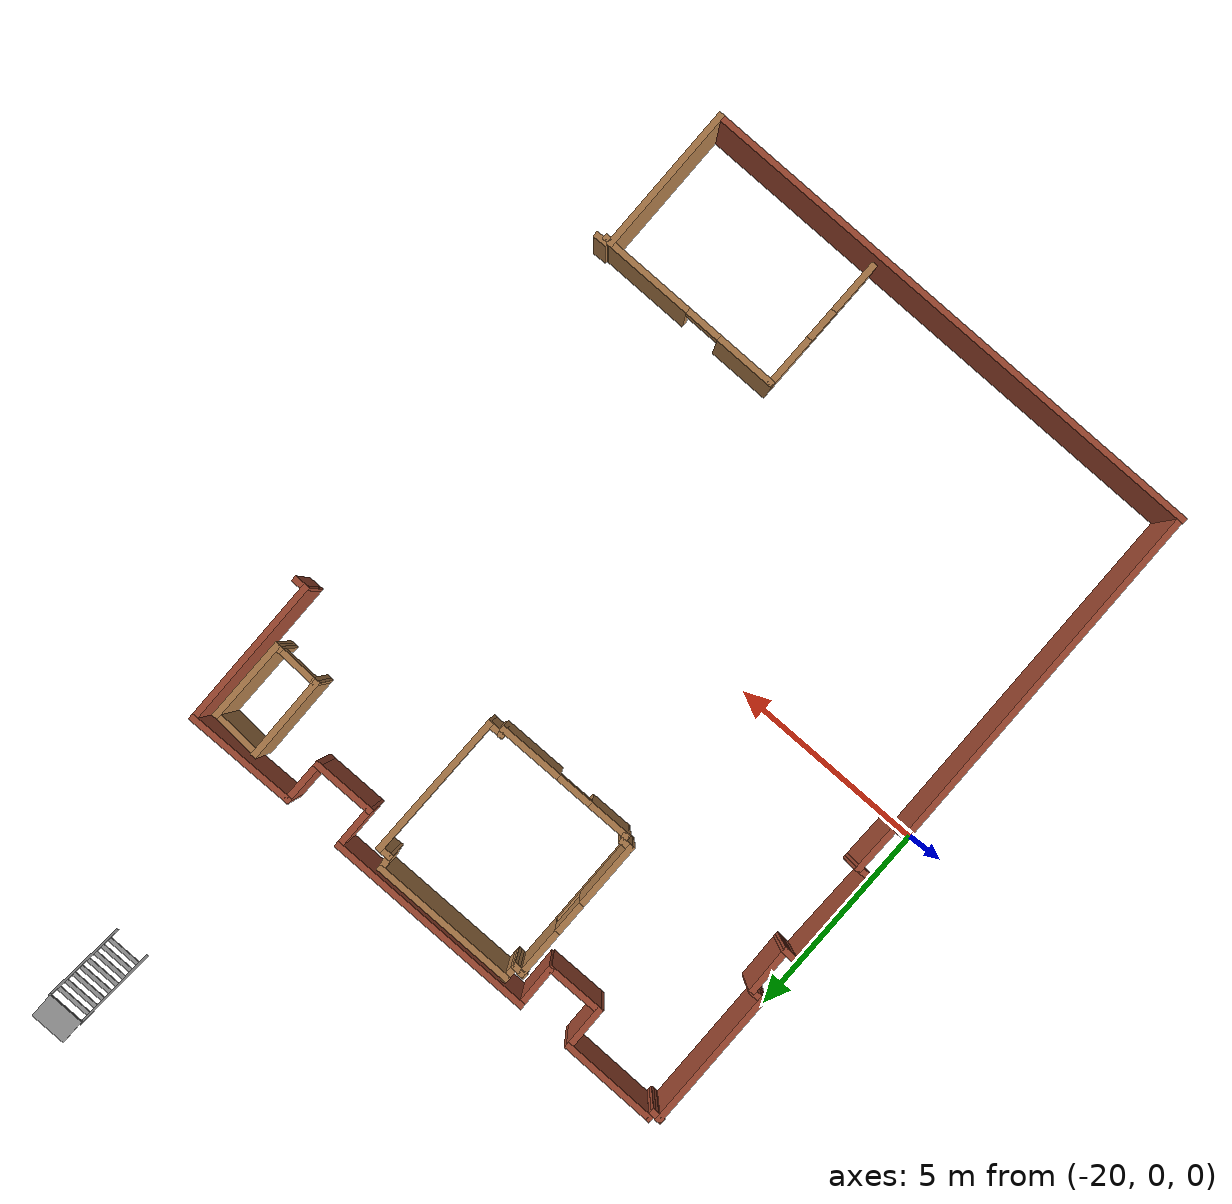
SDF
<sdf version="1.7">
 <world name="empty_world">
  <model name="my_floor">
   <pose>-0.708738 1.92561 0 0 -0 0</pose>
   <link name="Wall_11">
    <collision name="Wall_11_Collision">
     <geometry><box><size>1.12811 0.15 2.5</size></box></geometry>
     <pose>0 0 1.25 0 -0 0</pose>
    </collision>
    <visual name="Wall_11_Visual">
     <pose>0 0 1.25 0 -0 0</pose>
     <geometry><box><size>1.12811 0.15 2.5</size></box></geometry>
     <material>
      <script><uri>file://media/materials/scripts/gazebo.material</uri><name>Gazebo/Bricks</name></script>
      <ambient>1 1 1 1</ambient>
     </material>
     <meta><layer>0</layer></meta>
    </visual>
    <pose>-14.952 5.89159 0 0 -0 1.59432</pose>
   </link>
   <link name="Wall_111">
    <collision name="Wall_111_Collision">
     <geometry><box><size>0.259007 0.15 2.5</size></box></geometry>
     <pose>0 0 1.25 0 -0 0</pose>
    </collision>
    <visual name="Wall_111_Visual">
     <pose>0 0 1.25 0 -0 0</pose>
     <geometry><box><size>0.259007 0.15 2.5</size></box></geometry>
     <material>
      <script><uri>file://media/materials/scripts/gazebo.material</uri><name>Gazebo/Wood</name></script>
      <ambient>1 1 1 1</ambient>
     </material>
     <meta><layer>0</layer></meta>
    </visual>
    <pose>-5.4928 -7.3408 0 0 -0 -3.13179</pose>
   </link>
   <link name="Wall_113">
    <collision name="Wall_113_Collision">
     <geometry><box><size>0.352916 0.15 2.5</size></box></geometry>
     <pose>0 0 1.25 0 -0 0</pose>
    </collision>
    <visual name="Wall_113_Visual">
     <pose>0 0 1.25 0 -0 0</pose>
     <geometry><box><size>0.352916 0.15 2.5</size></box></geometry>
     <material>
      <script><uri>file://media/materials/scripts/gazebo.material</uri><name>Gazebo/Wood</name></script>
      <ambient>1 1 1 1</ambient>
     </material>
     <meta><layer>0</layer></meta>
    </visual>
    <pose>-5.36071 -7.24954 0 0 -0 -3.09324</pose>
   </link>
   <link name="Wall_115">
    <collision name="Wall_115_Collision">
     <geometry><box><size>3.77375 0.15 2.5</size></box></geometry>
     <pose>0 0 1.25 0 -0 0</pose>
    </collision>
    <visual name="Wall_115_Visual">
     <pose>0 0 1.25 0 -0 0</pose>
     <geometry><box><size>3.77375 0.15 2.5</size></box></geometry>
     <material>
      <script><uri>file://media/materials/scripts/gazebo.material</uri><name>Gazebo/Wood</name></script>
      <ambient>1 1 1 1</ambient>
     </material>
     <meta><layer>0</layer></meta>
    </visual>
    <pose>-5.56089 -9.12692 0 0 -0 -1.5635</pose>
   </link>
   <link name="Wall_116">
    <collision name="Wall_116_Collision">
     <geometry><box><size>13.4279 0.15 2.5</size></box></geometry>
     <pose>0 0 1.25 0 -0 0</pose>
    </collision>
    <visual name="Wall_116_Visual">
     <pose>0 0 1.25 0 -0 0</pose>
     <geometry><box><size>13.4279 0.15 2.5</size></box></geometry>
     <material>
      <script><uri>file://media/materials/scripts/gazebo.material</uri><name>Gazebo/Bricks</name></script>
      <ambient>1 1 1 1</ambient>
     </material>
     <meta><layer>0</layer></meta>
    </visual>
    <pose>-12.1866 -10.952 0 0 -0 -3.1396</pose>
   </link>
   <link name="Wall_118">
    <collision name="Wall_118_Collision">
     <geometry><box><size>9.16762 0.15 2.5</size></box></geometry>
     <pose>0 0 1.25 0 -0 0</pose>
    </collision>
    <visual name="Wall_118_Visual">
     <pose>0 0 1.25 0 -0 0</pose>
     <geometry><box><size>9.16762 0.15 2.5</size></box></geometry>
     <material>
      <script><uri>file://media/materials/scripts/gazebo.material</uri><name>Gazebo/Bricks</name></script>
      <ambient>1 1 1 1</ambient>
     </material>
     <meta><layer>0</layer></meta>
    </visual>
    <pose>-18.8288 -6.37885 0 0 -0 1.5767</pose>
   </link>
   <link name="Wall_12">
    <collision name="Wall_12_Collision">
     <geometry><box><size>5.3825 0.15 2.5</size></box></geometry>
     <pose>0 0 1.25 0 -0 0</pose>
    </collision>
    <visual name="Wall_12_Visual">
     <pose>0 0 1.25 0 -0 0</pose>
     <geometry><box><size>5.3825 0.15 2.5</size></box></geometry>
     <material>
      <script><uri>file://media/materials/scripts/gazebo.material</uri><name>Gazebo/Bricks</name></script>
      <ambient>1 1 1 1</ambient>
     </material>
     <meta><layer>0</layer></meta>
    </visual>
    <pose>-12.3472 6.38034 0 0 -0 0</pose>
   </link>
   <link name="Wall_120">
    <collision name="Wall_120_Collision">
     <geometry><box><size>0.485333 0.15 2.5</size></box></geometry>
     <pose>0 0 1.25 0 -0 0</pose>
    </collision>
    <visual name="Wall_120_Visual">
     <pose>0 0 1.25 0 -0 0</pose>
     <geometry><box><size>0.485333 0.15 2.5</size></box></geometry>
     <material>
      <script><uri>file://media/materials/scripts/gazebo.material</uri><name>Gazebo/Bricks</name></script>
      <ambient>1 1 1 1</ambient>
     </material>
     <meta><layer>0</layer></meta>
    </visual>
    <pose>-18.7212 -1.85978 0 0 -0 0</pose>
   </link>
   <link name="Wall_121">
    <collision name="Wall_121_Collision">
     <geometry><box><size>1.35342 0.15 2.5</size></box></geometry>
     <pose>0 0 1.25 0 -0 0</pose>
    </collision>
    <visual name="Wall_121_Visual">
     <pose>0 0 1.25 0 -0 0</pose>
     <geometry><box><size>1.35342 0.15 2.5</size></box></geometry>
     <material>
      <script><uri>file://media/materials/scripts/gazebo.material</uri><name>Gazebo/Bricks</name></script>
      <ambient>1 1 1 1</ambient>
     </material>
     <meta><layer>0</layer></meta>
    </visual>
    <pose>-18.5436 -1.25815 0 0 -0 1.5544</pose>
   </link>
   <link name="Wall_122">
    <collision name="Wall_122_Collision">
     <geometry><box><size>0.472451 0.15 2.5</size></box></geometry>
     <pose>0 0 1.25 0 -0 0</pose>
    </collision>
    <visual name="Wall_122_Visual">
     <pose>0 0 1.25 0 -0 0</pose>
     <geometry><box><size>0.472451 0.15 2.5</size></box></geometry>
     <material>
      <script><uri>file://media/materials/scripts/gazebo.material</uri><name>Gazebo/Bricks</name></script>
      <ambient>1 1 1 1</ambient>
     </material>
     <meta><layer>0</layer></meta>
    </visual>
    <pose>-18.6949 -0.6631 0 0 -0 -3.1008</pose>
   </link>
   <link name="Wall_124">
    <collision name="Wall_124_Collision">
     <geometry><box><size>2.54244 0.15 2.5</size></box></geometry>
     <pose>0 0 1.25 0 -0 0</pose>
    </collision>
    <visual name="Wall_124_Visual">
     <pose>0 0 1.25 0 -0 0</pose>
     <geometry><box><size>2.54244 0.15 2.5</size></box></geometry>
     <material>
      <script><uri>file://media/materials/scripts/gazebo.material</uri><name>Gazebo/Bricks</name></script>
      <ambient>1 1 1 1</ambient>
     </material>
     <meta><layer>0</layer></meta>
    </visual>
    <pose>-18.8667 0.544978 0 0 -0 1.55157</pose>
   </link>
   <link name="Wall_125">
    <collision name="Wall_125_Collision">
     <geometry><box><size>0.472205 0.15 2.5</size></box></geometry>
     <pose>0 0 1.25 0 -0 0</pose>
    </collision>
    <visual name="Wall_125_Visual">
     <pose>0 0 1.25 0 -0 0</pose>
     <geometry><box><size>0.472205 0.15 2.5</size></box></geometry>
     <material>
      <script><uri>file://media/materials/scripts/gazebo.material</uri><name>Gazebo/Bricks</name></script>
      <ambient>1 1 1 1</ambient>
     </material>
     <meta><layer>0</layer></meta>
    </visual>
    <pose>-18.6827 1.73523 0 0 -0 -0.035699</pose>
   </link>
   <link name="Wall_126">
    <collision name="Wall_126_Collision">
     <geometry><box><size>1.24274 0.15 2.5</size></box></geometry>
     <pose>0 0 1.25 0 -0 0</pose>
    </collision>
    <visual name="Wall_126_Visual">
     <pose>0 0 1.25 0 -0 0</pose>
     <geometry><box><size>1.24274 0.15 2.5</size></box></geometry>
     <material>
      <script><uri>file://media/materials/scripts/gazebo.material</uri><name>Gazebo/Bricks</name></script>
      <ambient>1 1 1 1</ambient>
     </material>
     <meta><layer>0</layer></meta>
    </visual>
    <pose>-18.5332 2.27573 0 0 -0 1.59185</pose>
   </link>
   <link name="Wall_13">
    <collision name="Wall_13_Collision">
     <geometry><box><size>1.16206 0.15 2.5</size></box></geometry>
     <pose>0 0 1.25 0 -0 0</pose>
    </collision>
    <visual name="Wall_13_Visual">
     <pose>0 0 1.25 0 -0 0</pose>
     <geometry><box><size>1.16206 0.15 2.5</size></box></geometry>
     <material>
      <script><uri>file://media/materials/scripts/gazebo.material</uri><name>Gazebo/Bricks</name></script>
      <ambient>1 1 1 1</ambient>
     </material>
     <meta><layer>0</layer></meta>
    </visual>
    <pose>-9.72525 5.87434 0 0 -0 -1.55943</pose>
   </link>
   <link name="Wall_139">
    <pose>-7.87411 -7.31509 0 0 -0 3.14159</pose>
    <visual name="Wall_139_Visual_0">
     <pose>-1.22688 0 1.25 0 -0 0</pose>
     <geometry><box><size>2.29625 0.15 2.5</size></box></geometry>
     <material>
      <script><uri>file://media/materials/scripts/gazebo.material</uri><name>Gazebo/Wood</name></script>
      <ambient>1 1 1 1</ambient>
     </material>
     <meta><layer>0</layer></meta>
    </visual>
    <collision name="Wall_139_Collision_0">
     <geometry><box><size>2.29625 0.15 2.5</size></box></geometry>
     <pose>-1.22688 0 1.25 0 -0 0</pose>
    </collision>
    <visual name="Wall_139_Visual_1">
     <pose>1.59812 0 1.25 0 -0 0</pose>
     <geometry><box><size>1.55375 0.15 2.5</size></box></geometry>
     <material>
      <script><uri>file://media/materials/scripts/gazebo.material</uri><name>Gazebo/Wood</name></script>
      <ambient>1 1 1 1</ambient>
     </material>
     <meta><layer>0</layer></meta>
    </visual>
    <collision name="Wall_139_Collision_1">
     <geometry><box><size>1.55375 0.15 2.5</size></box></geometry>
     <pose>1.59812 0 1.25 0 -0 0</pose>
    </collision>
    <visual name="Wall_139_Visual_2">
     <pose>0.371246 0 2.25 0 -0 0</pose>
     <geometry><box><size>0.9 0.15 0.5</size></box></geometry>
     <material>
      <script><uri>file://media/materials/scripts/gazebo.material</uri><name>Gazebo/Wood</name></script>
      <ambient>1 1 1 1</ambient>
     </material>
     <meta><layer>0</layer></meta>
    </visual>
    <collision name="Wall_139_Collision_2">
     <geometry><box><size>0.9 0.15 0.5</size></box></geometry>
     <pose>0.371246 0 2.25 0 -0 0</pose>
    </collision>
   </link>
   <link name="Wall_14">
    <collision name="Wall_14_Collision">
     <geometry><box><size>1.6335 0.15 2.5</size></box></geometry>
     <pose>0 0 1.25 0 -0 0</pose>
    </collision>
    <visual name="Wall_14_Visual">
     <pose>0 0 1.25 0 -0 0</pose>
     <geometry><box><size>1.6335 0.15 2.5</size></box></geometry>
     <material>
      <script><uri>file://media/materials/scripts/gazebo.material</uri><name>Gazebo/Bricks</name></script>
      <ambient>1 1 1 1</ambient>
     </material>
     <meta><layer>0</layer></meta>
    </visual>
    <pose>-8.97775 5.36834 0 0 -0 0</pose>
   </link>
   <link name="Wall_140">
    <pose>-10.1741 -8.99009 0 0 -0 -1.5708</pose>
    <visual name="Wall_140_Visual_0">
     <pose>-1.07557 0 1.25 0 -0 0</pose>
     <geometry><box><size>1.34886 0.15 2.5</size></box></geometry>
     <material>
      <script><uri>file://media/materials/scripts/gazebo.material</uri><name>Gazebo/Wood</name></script>
      <ambient>1 1 1 1</ambient>
     </material>
     <meta><layer>0</layer></meta>
    </visual>
    <collision name="Wall_140_Collision_0">
     <geometry><box><size>1.34886 0.15 2.5</size></box></geometry>
     <pose>-1.07557 0 1.25 0 -0 0</pose>
    </collision>
    <visual name="Wall_140_Visual_1">
     <pose>0.674431 0 0.25 0 -0 0</pose>
     <geometry><box><size>2.15114 0.15 0.5</size></box></geometry>
     <material>
      <script><uri>file://media/materials/scripts/gazebo.material</uri><name>Gazebo/Wood</name></script>
      <ambient>1 1 1 1</ambient>
     </material>
     <meta><layer>0</layer></meta>
    </visual>
    <collision name="Wall_140_Collision_1">
     <geometry><box><size>2.15114 0.15 0.5</size></box></geometry>
     <pose>0.674431 0 0.25 0 -0 0</pose>
    </collision>
    <visual name="Wall_140_Visual_2">
     <pose>1.07443 0 1.5 0 -0 0</pose>
     <geometry><box><size>1.35114 0.15 2</size></box></geometry>
     <material>
      <script><uri>file://media/materials/scripts/gazebo.material</uri><name>Gazebo/Wood</name></script>
      <ambient>1 1 1 1</ambient>
     </material>
     <meta><layer>0</layer></meta>
    </visual>
    <collision name="Wall_140_Collision_2">
     <geometry><box><size>1.35114 0.15 2</size></box></geometry>
     <pose>1.07443 0 1.5 0 -0 0</pose>
    </collision>
    <visual name="Wall_140_Visual_3">
     <pose>-0.001139 0 1.9 0 -0 0</pose>
     <geometry><box><size>0.8 0.15 1.2</size></box></geometry>
     <material>
      <script><uri>file://media/materials/scripts/gazebo.material</uri><name>Gazebo/Wood</name></script>
      <ambient>1 1 1 1</ambient>
     </material>
     <meta><layer>0</layer></meta>
    </visual>
    <collision name="Wall_140_Collision_3">
     <geometry><box><size>0.8 0.15 1.2</size></box></geometry>
     <pose>-0.001139 0 1.9 0 -0 0</pose>
    </collision>
   </link>
   <link name="Wall_15">
    <collision name="Wall_15_Collision">
     <geometry><box><size>1.13907 0.15 2.5</size></box></geometry>
     <pose>0 0 1.25 0 -0 0</pose>
    </collision>
    <visual name="Wall_15_Visual">
     <pose>0 0 1.25 0 -0 0</pose>
     <geometry><box><size>1.13907 0.15 2.5</size></box></geometry>
     <material>
      <script><uri>file://media/materials/scripts/gazebo.material</uri><name>Gazebo/Bricks</name></script>
      <ambient>1 1 1 1</ambient>
     </material>
     <meta><layer>0</layer></meta>
    </visual>
    <pose>-8.236 5.86284 0 0 -0 1.5708</pose>
   </link>
   <link name="Wall_16">
    <collision name="Wall_16_Collision">
     <geometry><box><size>2.8411 0.15 2.5</size></box></geometry>
     <pose>0 0 1.25 0 -0 0</pose>
    </collision>
    <visual name="Wall_16_Visual">
     <pose>0 0 1.25 0 -0 0</pose>
     <geometry><box><size>2.8411 0.15 2.5</size></box></geometry>
     <material>
      <script><uri>file://media/materials/scripts/gazebo.material</uri><name>Gazebo/Bricks</name></script>
      <ambient>1 1 1 1</ambient>
     </material>
     <meta><layer>0</layer></meta>
    </visual>
    <pose>-6.8905 6.36884 0 0 -0 0.008547</pose>
   </link>
   <link name="Wall_17">
    <collision name="Wall_17_Collision">
     <geometry><box><size>3.86466 0.15 2.5</size></box></geometry>
     <pose>0 0 1.25 0 -0 0</pose>
    </collision>
    <visual name="Wall_17_Visual">
     <pose>0 0 1.25 0 -0 0</pose>
     <geometry><box><size>3.86466 0.15 2.5</size></box></geometry>
     <material>
      <script><uri>file://media/materials/scripts/gazebo.material</uri><name>Gazebo/Bricks</name></script>
      <ambient>1 1 1 1</ambient>
     </material>
     <meta><layer>0</layer></meta>
    </visual>
    <pose>-5.52775 4.52309 0 0 -0 -1.56151</pose>
   </link>
   <link name="Wall_18">
    <collision name="Wall_18_Collision">
     <geometry><box><size>0.403 0.15 2.5</size></box></geometry>
     <pose>0 0 1.25 0 -0 0</pose>
    </collision>
    <visual name="Wall_18_Visual">
     <pose>0 0 1.25 0 -0 0</pose>
     <geometry><box><size>0.403 0.15 2.5</size></box></geometry>
     <material>
      <script><uri>file://media/materials/scripts/gazebo.material</uri><name>Gazebo/Bricks</name></script>
      <ambient>1 1 1 1</ambient>
     </material>
     <meta><layer>0</layer></meta>
    </visual>
    <pose>-5.384 2.66584 0 0 -0 0</pose>
   </link>
   <link name="Wall_2">
    <collision name="Wall_2_Collision">
     <geometry><box><size>3.56024 0.15 2.5</size></box></geometry>
     <pose>0 0 1.25 0 -0 0</pose>
    </collision>
    <visual name="Wall_2_Visual">
     <pose>0 0 1.25 0 -0 0</pose>
     <geometry><box><size>3.56024 0.15 2.5</size></box></geometry>
     <material>
      <script><uri>file://media/materials/scripts/gazebo.material</uri><name>Gazebo/Bricks</name></script>
      <ambient>1 1 1 1</ambient>
     </material>
     <meta><layer>0</layer></meta>
    </visual>
    <pose>-18.8463 4.56064 0 0 -0 -1.56636</pose>
   </link>
   <link name="Wall_20">
    <pose>-14.5295 4.06307 0 0 -0 -1.56712</pose>
    <visual name="Wall_20_Visual_0">
     <pose>-1.24637 0 1.25 0 -0 0</pose>
     <geometry><box><size>1.25449 0.15 2.5</size></box></geometry>
     <material>
      <script><uri>file://media/materials/scripts/gazebo.material</uri><name>Gazebo/Wood</name></script>
      <ambient>1 1 1 1</ambient>
     </material>
     <meta><layer>0</layer></meta>
    </visual>
    <collision name="Wall_20_Collision_0">
     <geometry><box><size>1.25449 0.15 2.5</size></box></geometry>
     <pose>-1.24637 0 1.25 0 -0 0</pose>
    </collision>
    <visual name="Wall_20_Visual_1">
     <pose>0.627246 0 0.25 0 -0 0</pose>
     <geometry><box><size>2.49273 0.15 0.5</size></box></geometry>
     <material>
      <script><uri>file://media/materials/scripts/gazebo.material</uri><name>Gazebo/Wood</name></script>
      <ambient>1 1 1 1</ambient>
     </material>
     <meta><layer>0</layer></meta>
    </visual>
    <collision name="Wall_20_Collision_1">
     <geometry><box><size>2.49273 0.15 0.5</size></box></geometry>
     <pose>0.627246 0 0.25 0 -0 0</pose>
    </collision>
    <visual name="Wall_20_Visual_2">
     <pose>1.02725 0 1.5 0 -0 0</pose>
     <geometry><box><size>1.69273 0.15 2</size></box></geometry>
     <material>
      <script><uri>file://media/materials/scripts/gazebo.material</uri><name>Gazebo/Wood</name></script>
      <ambient>1 1 1 1</ambient>
     </material>
     <meta><layer>0</layer></meta>
    </visual>
    <collision name="Wall_20_Collision_2">
     <geometry><box><size>1.69273 0.15 2</size></box></geometry>
     <pose>1.02725 0 1.5 0 -0 0</pose>
    </collision>
    <visual name="Wall_20_Visual_3">
     <pose>-0.219121 0 1.9 0 -0 0</pose>
     <geometry><box><size>0.8 0.15 1.2</size></box></geometry>
     <material>
      <script><uri>file://media/materials/scripts/gazebo.material</uri><name>Gazebo/Wood</name></script>
      <ambient>1 1 1 1</ambient>
     </material>
     <meta><layer>0</layer></meta>
    </visual>
    <collision name="Wall_20_Collision_3">
     <geometry><box><size>0.8 0.15 1.2</size></box></geometry>
     <pose>-0.219121 0 1.9 0 -0 0</pose>
    </collision>
   </link>
   <link name="Wall_21">
    <collision name="Wall_21_Collision">
     <geometry><box><size>0.3616 0.15 2.5</size></box></geometry>
     <pose>0 0 1.25 0 -0 0</pose>
    </collision>
    <visual name="Wall_21_Visual">
     <pose>0 0 1.25 0 -0 0</pose>
     <geometry><box><size>0.3616 0.15 2.5</size></box></geometry>
     <material>
      <script><uri>file://media/materials/scripts/gazebo.material</uri><name>Gazebo/Wood</name></script>
      <ambient>1 1 1 1</ambient>
     </material>
     <meta><layer>0</layer></meta>
    </visual>
    <pose>-14.417 2.26447 0 0 -0 0</pose>
   </link>
   <link name="Wall_22">
    <collision name="Wall_22_Collision">
     <geometry><box><size>0.282779 0.15 2.5</size></box></geometry>
     <pose>0 0 1.25 0 -0 0</pose>
    </collision>
    <visual name="Wall_22_Visual">
     <pose>0 0 1.25 0 -0 0</pose>
     <geometry><box><size>0.282779 0.15 2.5</size></box></geometry>
     <material>
      <script><uri>file://media/materials/scripts/gazebo.material</uri><name>Gazebo/Wood</name></script>
      <ambient>1 1 1 1</ambient>
     </material>
     <meta><layer>0</layer></meta>
    </visual>
    <pose>-14.2871 2.20261 0 0 -0 -1.19926</pose>
   </link>
   <link name="Wall_23">
    <pose>-12.5282 2.12987 0 0 -0 0.003774</pose>
    <visual name="Wall_23_Visual_0">
     <pose>-1.27076 0 1.25 0 -0 0</pose>
     <geometry><box><size>1.11312 0.15 2.5</size></box></geometry>
     <material>
      <script><uri>file://media/materials/scripts/gazebo.material</uri><name>Gazebo/Wood</name></script>
      <ambient>1 1 1 1</ambient>
     </material>
     <meta><layer>0</layer></meta>
    </visual>
    <collision name="Wall_23_Collision_0">
     <geometry><box><size>1.11312 0.15 2.5</size></box></geometry>
     <pose>-1.27076 0 1.25 0 -0 0</pose>
    </collision>
    <visual name="Wall_23_Visual_1">
     <pose>1.00656 0 1.25 0 -0 0</pose>
     <geometry><box><size>1.64153 0.15 2.5</size></box></geometry>
     <material>
      <script><uri>file://media/materials/scripts/gazebo.material</uri><name>Gazebo/Wood</name></script>
      <ambient>1 1 1 1</ambient>
     </material>
     <meta><layer>0</layer></meta>
    </visual>
    <collision name="Wall_23_Collision_1">
     <geometry><box><size>1.64153 0.15 2.5</size></box></geometry>
     <pose>1.00656 0 1.25 0 -0 0</pose>
    </collision>
    <visual name="Wall_23_Visual_2">
     <pose>-0.264201 0 2.25 0 -0 0</pose>
     <geometry><box><size>0.9 0.15 0.5</size></box></geometry>
     <material>
      <script><uri>file://media/materials/scripts/gazebo.material</uri><name>Gazebo/Wood</name></script>
      <ambient>1 1 1 1</ambient>
     </material>
     <meta><layer>0</layer></meta>
    </visual>
    <collision name="Wall_23_Collision_2">
     <geometry><box><size>0.9 0.15 0.5</size></box></geometry>
     <pose>-0.264201 0 2.25 0 -0 0</pose>
    </collision>
   </link>
   <link name="Wall_24">
    <collision name="Wall_24_Collision">
     <geometry><box><size>0.253368 0.15 2.5</size></box></geometry>
     <pose>0 0 1.25 0 -0 0</pose>
    </collision>
    <visual name="Wall_24_Visual">
     <pose>0 0 1.25 0 -0 0</pose>
     <geometry><box><size>0.253368 0.15 2.5</size></box></geometry>
     <material>
      <script><uri>file://media/materials/scripts/gazebo.material</uri><name>Gazebo/Wood</name></script>
      <ambient>1 1 1 1</ambient>
     </material>
     <meta><layer>0</layer></meta>
    </visual>
    <pose>-10.7759 2.20261 0 0 -0 1.91602</pose>
   </link>
   <link name="Wall_25">
    <collision name="Wall_25_Collision">
     <geometry><box><size>0.494104 0.15 2.5</size></box></geometry>
     <pose>0 0 1.25 0 -0 0</pose>
    </collision>
    <visual name="Wall_25_Visual">
     <pose>0 0 1.25 0 -0 0</pose>
     <geometry><box><size>0.494104 0.15 2.5</size></box></geometry>
     <material>
      <script><uri>file://media/materials/scripts/gazebo.material</uri><name>Gazebo/Wood</name></script>
      <ambient>1 1 1 1</ambient>
     </material>
     <meta><layer>0</layer></meta>
    </visual>
    <pose>-10.6215 2.25125 0 0 -0 0</pose>
   </link>
   <link name="Wall_26">
    <collision name="Wall_26_Collision">
     <geometry><box><size>3.734 0.15 2.5</size></box></geometry>
     <pose>0 0 1.25 0 -0 0</pose>
    </collision>
    <visual name="Wall_26_Visual">
     <pose>0 0 1.25 0 -0 0</pose>
     <geometry><box><size>3.734 0.15 2.5</size></box></geometry>
     <material>
      <script><uri>file://media/materials/scripts/gazebo.material</uri><name>Gazebo/Wood</name></script>
      <ambient>1 1 1 1</ambient>
     </material>
     <meta><layer>0</layer></meta>
    </visual>
    <pose>-10.4429 4.04323 0 0 -0 1.56711</pose>
   </link>
   <link name="Wall_27">
    <collision name="Wall_27_Collision">
     <geometry><box><size>0.4145 0.15 2.5</size></box></geometry>
     <pose>0 0 1.25 0 -0 0</pose>
    </collision>
    <visual name="Wall_27_Visual">
     <pose>0 0 1.25 0 -0 0</pose>
     <geometry><box><size>0.4145 0.15 2.5</size></box></geometry>
     <material>
      <script><uri>file://media/materials/scripts/gazebo.material</uri><name>Gazebo/Wood</name></script>
      <ambient>1 1 1 1</ambient>
     </material>
     <meta><layer>0</layer></meta>
    </visual>
    <pose>-10.5686 5.83522 0 0 -0 3.14159</pose>
   </link>
   <link name="Wall_28">
    <collision name="Wall_28_Collision">
     <geometry><box><size>0.471778 0.15 2.5</size></box></geometry>
     <pose>0 0 1.25 0 -0 0</pose>
    </collision>
    <visual name="Wall_28_Visual">
     <pose>0 0 1.25 0 -0 0</pose>
     <geometry><box><size>0.471778 0.15 2.5</size></box></geometry>
     <material>
      <script><uri>file://media/materials/scripts/gazebo.material</uri><name>Gazebo/Wood</name></script>
      <ambient>1 1 1 1</ambient>
     </material>
     <meta><layer>0</layer></meta>
    </visual>
    <pose>-10.7273 5.99392 0 0 -0 1.73595</pose>
   </link>
   <link name="Wall_29">
    <collision name="Wall_29_Collision">
     <geometry><box><size>3.73398 0.15 2.5</size></box></geometry>
     <pose>0 0 1.25 0 -0 0</pose>
    </collision>
    <visual name="Wall_29_Visual">
     <pose>0 0 1.25 0 -0 0</pose>
     <geometry><box><size>3.73398 0.15 2.5</size></box></geometry>
     <material>
      <script><uri>file://media/materials/scripts/gazebo.material</uri><name>Gazebo/Wood</name></script>
      <ambient>1 1 1 1</ambient>
     </material>
     <meta><layer>0</layer></meta>
    </visual>
    <pose>-12.5457 6.15262 0 0 -0 3.14159</pose>
   </link>
   <link name="Wall_3">
    <collision name="Wall_3_Collision">
     <geometry><box><size>0.4072 0.15 2.5</size></box></geometry>
     <pose>0 0 1.25 0 -0 0</pose>
    </collision>
    <visual name="Wall_3_Visual">
     <pose>0 0 1.25 0 -0 0</pose>
     <geometry><box><size>0.4072 0.15 2.5</size></box></geometry>
     <material>
      <script><uri>file://media/materials/scripts/gazebo.material</uri><name>Gazebo/Bricks</name></script>
      <ambient>1 1 1 1</ambient>
     </material>
     <meta><layer>0</layer></meta>
    </visual>
    <pose>-18.7102 2.85932 0 0 -0 0.029403</pose>
   </link>
   <link name="Wall_31">
    <collision name="Wall_31_Collision">
     <geometry><box><size>0.388417 0.15 2.5</size></box></geometry>
     <pose>0 0 1.25 0 -0 0</pose>
    </collision>
    <visual name="Wall_31_Visual">
     <pose>0 0 1.25 0 -0 0</pose>
     <geometry><box><size>0.388417 0.15 2.5</size></box></geometry>
     <material>
      <script><uri>file://media/materials/scripts/gazebo.material</uri><name>Gazebo/Wood</name></script>
      <ambient>1 1 1 1</ambient>
     </material>
     <meta><layer>0</layer></meta>
    </visual>
    <pose>-14.4567 5.84183 0 0 -0 -0.055499</pose>
   </link>
   <link name="Wall_32">
    <collision name="Wall_32_Collision">
     <geometry><box><size>0.494104 0.15 2.5</size></box></geometry>
     <pose>0 0 1.25 0 -0 0</pose>
    </collision>
    <visual name="Wall_32_Visual">
     <pose>0 0 1.25 0 -0 0</pose>
     <geometry><box><size>0.494104 0.15 2.5</size></box></geometry>
     <material>
      <script><uri>file://media/materials/scripts/gazebo.material</uri><name>Gazebo/Wood</name></script>
      <ambient>1 1 1 1</ambient>
     </material>
     <meta><layer>0</layer></meta>
    </visual>
    <pose>-14.3377 6.00715 0 0 -0 1.5708</pose>
   </link>
   <link name="Wall_34">
    <collision name="Wall_34_Collision">
     <geometry><box><size>2.16037 0.15 2.5</size></box></geometry>
     <pose>0 0 1.25 0 -0 0</pose>
    </collision>
    <visual name="Wall_34_Visual">
     <pose>0 0 1.25 0 -0 0</pose>
     <geometry><box><size>2.16037 0.15 2.5</size></box></geometry>
     <material>
      <script><uri>file://media/materials/scripts/gazebo.material</uri><name>Gazebo/Wood</name></script>
      <ambient>1 1 1 1</ambient>
     </material>
     <meta><layer>0</layer></meta>
    </visual>
    <pose>-7.05072 5.06817 0 0 -0 -1.55764</pose>
   </link>
   <link name="Wall_35">
    <pose>-6.4556 4.04323 0 0 -0 -0.034078</pose>
    <visual name="Wall_35_Visual_0">
     <pose>-0.5652 0 1.25 0 -0 0</pose>
     <geometry><box><size>0.184077 0.15 2.5</size></box></geometry>
     <material>
      <script><uri>file://media/materials/scripts/gazebo.material</uri><name>Gazebo/Wood</name></script>
      <ambient>1 1 1 1</ambient>
     </material>
     <meta><layer>0</layer></meta>
    </visual>
    <collision name="Wall_35_Collision_0">
     <geometry><box><size>0.184077 0.15 2.5</size></box></geometry>
     <pose>-0.5652 0 1.25 0 -0 0</pose>
    </collision>
    <visual name="Wall_35_Visual_1">
     <pose>0.542038 0 1.25 0 -0 0</pose>
     <geometry><box><size>0.2304 0.15 2.5</size></box></geometry>
     <material>
      <script><uri>file://media/materials/scripts/gazebo.material</uri><name>Gazebo/Wood</name></script>
      <ambient>1 1 1 1</ambient>
     </material>
     <meta><layer>0</layer></meta>
    </visual>
    <collision name="Wall_35_Collision_1">
     <geometry><box><size>0.2304 0.15 2.5</size></box></geometry>
     <pose>0.542038 0 1.25 0 -0 0</pose>
    </collision>
    <visual name="Wall_35_Visual_2">
     <pose>-0.023162 0 2.25 0 -0 0</pose>
     <geometry><box><size>0.9 0.15 0.5</size></box></geometry>
     <material>
      <script><uri>file://media/materials/scripts/gazebo.material</uri><name>Gazebo/Wood</name></script>
      <ambient>1 1 1 1</ambient>
     </material>
     <meta><layer>0</layer></meta>
    </visual>
    <collision name="Wall_35_Collision_2">
     <geometry><box><size>0.9 0.15 0.5</size></box></geometry>
     <pose>-0.023162 0 2.25 0 -0 0</pose>
    </collision>
   </link>
   <link name="Wall_36">
    <collision name="Wall_36_Collision">
     <geometry><box><size>2.1073 0.15 2.5</size></box></geometry>
     <pose>0 0 1.25 0 -0 0</pose>
    </collision>
    <visual name="Wall_36_Visual">
     <pose>0 0 1.25 0 -0 0</pose>
     <geometry><box><size>2.1073 0.15 2.5</size></box></geometry>
     <material>
      <script><uri>file://media/materials/scripts/gazebo.material</uri><name>Gazebo/Wood</name></script>
      <ambient>1 1 1 1</ambient>
     </material>
     <meta><layer>0</layer></meta>
    </visual>
    <pose>-5.8737 5.00205 0 0 -0 1.5708</pose>
   </link>
   <link name="Wall_37">
    <collision name="Wall_37_Collision">
     <geometry><box><size>1.31568 0.15 2.5</size></box></geometry>
     <pose>0 0 1.25 0 -0 0</pose>
    </collision>
    <visual name="Wall_37_Visual">
     <pose>0 0 1.25 0 -0 0</pose>
     <geometry><box><size>1.31568 0.15 2.5</size></box></geometry>
     <material>
      <script><uri>file://media/materials/scripts/gazebo.material</uri><name>Gazebo/Wood</name></script>
      <ambient>1 1 1 1</ambient>
     </material>
     <meta><layer>0</layer></meta>
    </visual>
    <pose>-6.4556 6.01376 0 0 -0 3.08483</pose>
   </link>
   <link name="Wall_5">
    <collision name="Wall_5_Collision">
     <geometry><box><size>0.354299 0.15 2.5</size></box></geometry>
     <pose>0 0 1.25 0 -0 0</pose>
    </collision>
    <visual name="Wall_5_Visual">
     <pose>0 0 1.25 0 -0 0</pose>
     <geometry><box><size>0.354299 0.15 2.5</size></box></geometry>
     <material>
      <script><uri>file://media/materials/scripts/gazebo.material</uri><name>Gazebo/Bricks</name></script>
      <ambient>1 1 1 1</ambient>
     </material>
     <meta><layer>0</layer></meta>
    </visual>
    <pose>-18.7669 6.24684 0 0 -0 -0.03702</pose>
   </link>
   <link name="Wall_6">
    <collision name="Wall_6_Collision">
     <geometry><box><size>0.301229 0.15 2.5</size></box></geometry>
     <pose>0 0 1.25 0 -0 0</pose>
    </collision>
    <visual name="Wall_6_Visual">
     <pose>0 0 1.25 0 -0 0</pose>
     <geometry><box><size>0.301229 0.15 2.5</size></box></geometry>
     <material>
      <script><uri>file://media/materials/scripts/gazebo.material</uri><name>Gazebo/Bricks</name></script>
      <ambient>1 1 1 1</ambient>
     </material>
     <meta><layer>0</layer></meta>
    </visual>
    <pose>-18.6648 6.31868 0 0 -0 1.5708</pose>
   </link>
   <link name="Wall_7">
    <collision name="Wall_7_Collision">
     <geometry><box><size>2.47147 0.15 2.5</size></box></geometry>
     <pose>0 0 1.25 0 -0 0</pose>
    </collision>
    <visual name="Wall_7_Visual">
     <pose>0 0 1.25 0 -0 0</pose>
     <geometry><box><size>2.47147 0.15 2.5</size></box></geometry>
     <material>
      <script><uri>file://media/materials/scripts/gazebo.material</uri><name>Gazebo/Bricks</name></script>
      <ambient>1 1 1 1</ambient>
     </material>
     <meta><layer>0</layer></meta>
    </visual>
    <pose>-17.5041 6.38295 0 0 -0 -0.009772</pose>
   </link>
   <link name="Wall_8">
    <collision name="Wall_8_Collision">
     <geometry><box><size>1.16335 0.15 2.5</size></box></geometry>
     <pose>0 0 1.25 0 -0 0</pose>
    </collision>
    <visual name="Wall_8_Visual">
     <pose>0 0 1.25 0 -0 0</pose>
     <geometry><box><size>1.16335 0.15 2.5</size></box></geometry>
     <material>
      <script><uri>file://media/materials/scripts/gazebo.material</uri><name>Gazebo/Bricks</name></script>
      <ambient>1 1 1 1</ambient>
     </material>
     <meta><layer>0</layer></meta>
    </visual>
    <pose>-16.3359 5.86499 0 0 -0 -1.55587</pose>
   </link>
   <link name="Wall_9">
    <collision name="Wall_9_Collision">
     <geometry><box><size>1.49596 0.15 2.5</size></box></geometry>
     <pose>0 0 1.25 0 -0 0</pose>
    </collision>
    <visual name="Wall_9_Visual">
     <pose>0 0 1.25 0 -0 0</pose>
     <geometry><box><size>1.49596 0.15 2.5</size></box></geometry>
     <material>
      <script><uri>file://media/materials/scripts/gazebo.material</uri><name>Gazebo/Bricks</name></script>
      <ambient>1 1 1 1</ambient>
     </material>
     <meta><layer>0</layer></meta>
    </visual>
    <pose>-15.6554 5.36215 0 0 -0 0.005618</pose>
   </link>
   <static>1</static>
  </model>
  <model name="ladder_60deg_0rails">
   <static>1</static>
   <link name="step0">
    <pose>0 0.15396 0.266667 0 -0 0</pose>
    <inertial>
     <mass>9.75482</mass>
     <inertia>
      <ixx>0.00957124</ixx>
      <iyy>0.65963</iyy>
      <izz>0.666842</izz>
      <ixy>0</ixy>
      <ixz>0</ixz>
      <iyz>0</iyz>
     </inertia>
    </inertial>
    <collision name="collision"><geometry><box><size>0.9 0.1016 0.0381</size></box></geometry></collision>
    <visual name="visual">
     <geometry><box><size>0.9 0.1016 0.0381</size></box></geometry>
     <material>
      <script><uri>file://media/materials/scripts/gazebo.material</uri><name>Gazebo/Grey</name></script>
     </material>
    </visual>
   </link>
   <link name="step1">
    <pose>0 0.30792 0.533333 0 -0 0</pose>
    <inertial>
     <mass>9.75482</mass>
     <inertia>
      <ixx>0.00957124</ixx>
      <iyy>0.65963</iyy>
      <izz>0.666842</izz>
      <ixy>0</ixy>
      <ixz>0</ixz>
      <iyz>0</iyz>
     </inertia>
    </inertial>
    <collision name="collision"><geometry><box><size>0.9 0.1016 0.0381</size></box></geometry></collision>
    <visual name="visual">
     <geometry><box><size>0.9 0.1016 0.0381</size></box></geometry>
     <material>
      <script><uri>file://media/materials/scripts/gazebo.material</uri><name>Gazebo/Grey</name></script>
     </material>
    </visual>
   </link>
   <link name="step2">
    <pose>0 0.46188 0.8 0 -0 0</pose>
    <inertial>
     <mass>9.75482</mass>
     <inertia>
      <ixx>0.00957124</ixx>
      <iyy>0.65963</iyy>
      <izz>0.666842</izz>
      <ixy>0</ixy>
      <ixz>0</ixz>
      <iyz>0</iyz>
     </inertia>
    </inertial>
    <collision name="collision"><geometry><box><size>0.9 0.1016 0.0381</size></box></geometry></collision>
    <visual name="visual">
     <geometry><box><size>0.9 0.1016 0.0381</size></box></geometry>
     <material>
      <script><uri>file://media/materials/scripts/gazebo.material</uri><name>Gazebo/Grey</name></script>
     </material>
    </visual>
   </link>
   <link name="step3">
    <pose>0 0.61584 1.06667 0 -0 0</pose>
    <inertial>
     <mass>9.75482</mass>
     <inertia>
      <ixx>0.00957124</ixx>
      <iyy>0.65963</iyy>
      <izz>0.666842</izz>
      <ixy>0</ixy>
      <ixz>0</ixz>
      <iyz>0</iyz>
     </inertia>
    </inertial>
    <collision name="collision"><geometry><box><size>0.9 0.1016 0.0381</size></box></geometry></collision>
    <visual name="visual">
     <geometry><box><size>0.9 0.1016 0.0381</size></box></geometry>
     <material>
      <script><uri>file://media/materials/scripts/gazebo.material</uri><name>Gazebo/Grey</name></script>
     </material>
    </visual>
   </link>
   <link name="step4">
    <pose>0 0.7698 1.33333 0 -0 0</pose>
    <inertial>
     <mass>9.75482</mass>
     <inertia>
      <ixx>0.00957124</ixx>
      <iyy>0.65963</iyy>
      <izz>0.666842</izz>
      <ixy>0</ixy>
      <ixz>0</ixz>
      <iyz>0</iyz>
     </inertia>
    </inertial>
    <collision name="collision"><geometry><box><size>0.9 0.1016 0.0381</size></box></geometry></collision>
    <visual name="visual">
     <geometry><box><size>0.9 0.1016 0.0381</size></box></geometry>
     <material>
      <script><uri>file://media/materials/scripts/gazebo.material</uri><name>Gazebo/Grey</name></script>
     </material>
    </visual>
   </link>
   <link name="step5">
    <pose>0 0.92376 1.6 0 -0 0</pose>
    <inertial>
     <mass>9.75482</mass>
     <inertia>
      <ixx>0.00957124</ixx>
      <iyy>0.65963</iyy>
      <izz>0.666842</izz>
      <ixy>0</ixy>
      <ixz>0</ixz>
      <iyz>0</iyz>
     </inertia>
    </inertial>
    <collision name="collision"><geometry><box><size>0.9 0.1016 0.0381</size></box></geometry></collision>
    <visual name="visual">
     <geometry><box><size>0.9 0.1016 0.0381</size></box></geometry>
     <material>
      <script><uri>file://media/materials/scripts/gazebo.material</uri><name>Gazebo/Grey</name></script>
     </material>
    </visual>
   </link>
   <link name="step6">
    <pose>0 1.07772 1.86667 0 -0 0</pose>
    <inertial>
     <mass>9.75482</mass>
     <inertia>
      <ixx>0.00957124</ixx>
      <iyy>0.65963</iyy>
      <izz>0.666842</izz>
      <ixy>0</ixy>
      <ixz>0</ixz>
      <iyz>0</iyz>
     </inertia>
    </inertial>
    <collision name="collision"><geometry><box><size>0.9 0.1016 0.0381</size></box></geometry></collision>
    <visual name="visual">
     <geometry><box><size>0.9 0.1016 0.0381</size></box></geometry>
     <material>
      <script><uri>file://media/materials/scripts/gazebo.material</uri><name>Gazebo/Grey</name></script>
     </material>
    </visual>
   </link>
   <link name="step7">
    <pose>0 1.23168 2.13333 0 -0 0</pose>
    <inertial>
     <mass>9.75482</mass>
     <inertia>
      <ixx>0.00957124</ixx>
      <iyy>0.65963</iyy>
      <izz>0.666842</izz>
      <ixy>0</ixy>
      <ixz>0</ixz>
      <iyz>0</iyz>
     </inertia>
    </inertial>
    <collision name="collision"><geometry><box><size>0.9 0.1016 0.0381</size></box></geometry></collision>
    <visual name="visual">
     <geometry><box><size>0.9 0.1016 0.0381</size></box></geometry>
     <material>
      <script><uri>file://media/materials/scripts/gazebo.material</uri><name>Gazebo/Grey</name></script>
     </material>
    </visual>
   </link>
   <link name="landing">
    <pose>0 1.68564 2.4 0 -0 0</pose>
    <inertial>
     <mass>57.6072</mass>
     <inertia><ixx>1.73518</ixx><iyy>3.89545</iyy><izz>5.6167</izz><ixy>0</ixy><ixz>0</ixz><iyz>0</iyz></inertia>
    </inertial>
    <collision name="collision"><geometry><box><size>0.9 0.6 0.1016</size></box></geometry></collision>
    <visual name="visual">
     <geometry><box><size>0.9 0.6 0.1016</size></box></geometry>
     <material>
      <script><uri>file://media/materials/scripts/gazebo.material</uri><name>Gazebo/Grey</name></script>
     </material>
    </visual>
   </link>
   <link name="left_side_wall">
    <pose>-0.45 0.69282 1.2 1.0472 -0 0</pose>
    <collision name="collision"><geometry><box><size>0.0508 2.85128 0.13</size></box></geometry></collision>
    <visual name="visual">
     <geometry><box><size>0.0508 2.85128 0.13</size></box></geometry>
     <material>
      <script><uri>file://media/materials/scripts/gazebo.material</uri><name>Gazebo/Grey</name></script>
     </material>
    </visual>
   </link>
   <link name="right_side_wall">
    <pose>0.45 0.69282 1.2 1.0472 -0 0</pose>
    <collision name="collision"><geometry><box><size>0.0508 2.85128 0.13</size></box></geometry></collision>
    <visual name="visual">
     <geometry><box><size>0.0508 2.85128 0.13</size></box></geometry>
     <material>
      <script><uri>file://media/materials/scripts/gazebo.material</uri><name>Gazebo/Grey</name></script>
     </material>
    </visual>
   </link>
   <pose>-8.31095 13.4646 0 0 -0 0</pose>
  </model>
 </world>
</sdf>
